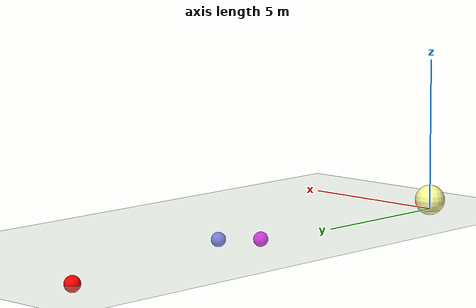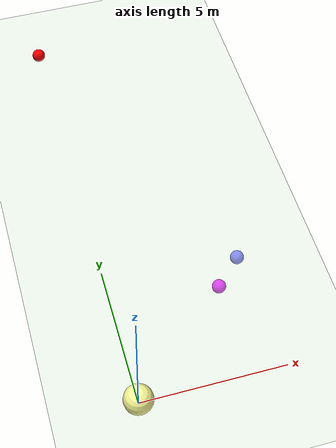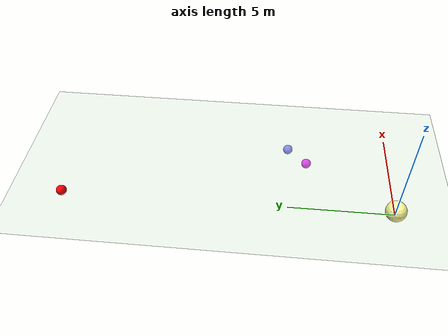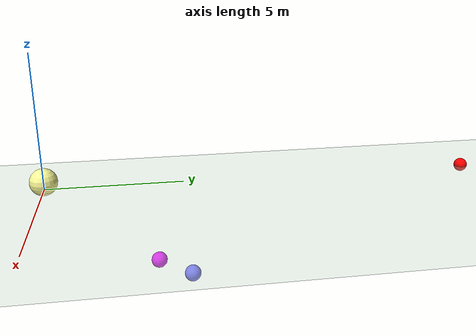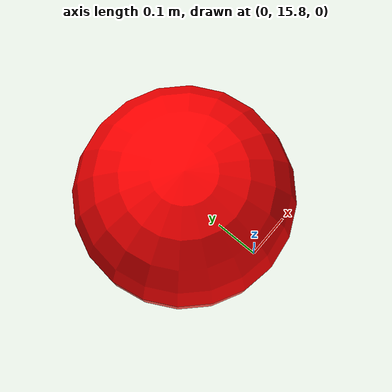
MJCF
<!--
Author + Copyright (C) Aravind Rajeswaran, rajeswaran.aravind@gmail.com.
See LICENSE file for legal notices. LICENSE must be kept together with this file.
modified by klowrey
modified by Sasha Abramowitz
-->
<mujoco model="PointMass">
    <compiler inertiafromgeom="true" angle="radian" />
    <default>
        <joint armature="0.01" damping="0.1" limited="true"/>
        <geom contype="0" friction="1 0.5 0.5" rgba="0.7 0.7 0 1"/>
        <motor ctrllimited="true" ctrlrange="-1.0 1.0" />
    </default>
    <option timestep="0.02"/>

    <asset>
        <texture type="skybox" builtin="gradient" rgb1=".1 .12 .15" rgb2="0 0 0" width="100" height="100"/>
        <texture builtin="flat" height="100" name="grayplane" rgb1="0.4 0.4 0.4" rgb2=".1 0.15 0.2" type="2d" width="100"/>
        <texture builtin="checker" height="100" name="texplane" rgb1="0 0 0" rgb2="0.8 0.8 0.8" type="2d" width="100"/>
        <material name="MatPlane" reflectance="0.5" shininess="1" specular="1" texrepeat="60 60" texture="texplane"/>
    </asset>

    <worldbody>
        <!-- Arena -->
        <light cutoff="100" diffuse="1 1 1" dir="-0 0 -1.3" directional="true" exponent="1" pos="0 0 1.3" specular=".1 .1 .1"/>
        <geom conaffinity="1" condim="3" material="MatPlane" name="floor" pos="0 0 0" rgba="0.8 0.9 0.8 1" size="40 40 40" type="plane"/>

        <!-- Agent -->
        <body name="agent" pos="0 0 .05">
            <geom conaffinity="1" contype="1" name="agent" pos="0 0 0.25" mass="1" rgba="1 1 0.6 1" size=".5" type="sphere"/>
            <joint axis="1 0 0" name="agent_x" pos="0 0 0" range="-20 20" stiffness="0" type="slide"/>
            <joint axis="0 1 0" name="agent_y" pos="0 0 0" range="-20 20" stiffness="0" type="slide"/>
            <joint axis="0 0 1" name="agent_z" pos="0 0 0" range="-20 20" stiffness="0" type="slide"/>
        </body>

        <!-- Target -->

        <geom name="recomend_geom" pos="4 4 -1" size="0.25" type="sphere" material="" contype="2" conaffinity="2" condim="6" rgba="0.9 0 1 1"/>
        <geom name="target_geom" pos="5 5 -1" size="0.25" type="sphere" material="" contype="2" conaffinity="2" condim="6" rgba="0.4 0.4 1 1" />
        <geom name="goal" pos="0 16 0" size="0.25" type="sphere" material="" contype="2" conaffinity="2" condim="6" rgba="1 0 0 1" />

    </worldbody>

    <actuator>
        <motor gear="10.0" joint="agent_x"/>
        <motor gear="10.0" joint="agent_y"/>
    </actuator>

</mujoco>
